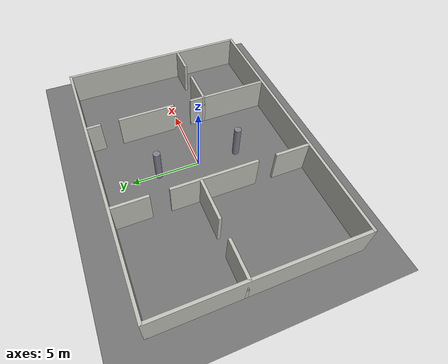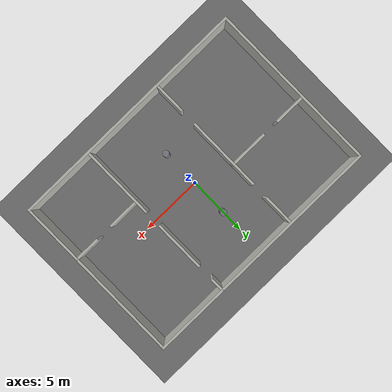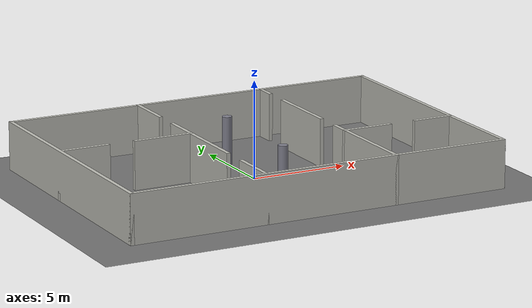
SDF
<sdf version="1.9">
 <world name="origin_office_people">
  <spherical_coordinates>
   <surface_model>EARTH_WGS84</surface_model>
   <world_frame_orientation>ENU</world_frame_orientation>
   <latitude_deg>51.453423125136865</latitude_deg>
   <longitude_deg>5.448826930660351</longitude_deg>
   <elevation>0</elevation>
   <heading_deg>0</heading_deg>
  </spherical_coordinates>
  <physics name="1ms" type="ignored">
   <max_step_size>0.01</max_step_size>
   <real_time_factor>1.0</real_time_factor>
  </physics>
  <plugin filename="gz-sim-physics-system" name="gz::sim::systems::Physics"/>
  <plugin filename="gz-sim-scene-broadcaster-system" name="gz::sim::systems::SceneBroadcaster"/>
  <plugin filename="gz-sim-user-commands-system" name="gz::sim::systems::UserCommands"/>
  <scene><ambient>0.6 0.6 0.6 1</ambient><background>0.8 0.85 0.9 1</background><shadows>false</shadows></scene>
  <light type="directional" name="sun">
   <cast_shadows>false</cast_shadows>
   <pose>0 0 10 0 0 0</pose>
   <diffuse>0.9 0.9 0.9 1</diffuse>
   <specular>0.2 0.2 0.2 1</specular>
   <direction>-0.3 0.2 -0.9</direction>
  </light>
  <model name="ground_plane">
   <static>true</static>
   <link name="link">
    <collision name="c">
     <geometry><plane><normal>0 0 1</normal><size>40 30</size></plane></geometry>
     <surface><friction><ode><mu>1</mu><mu2>1</mu2></ode></friction></surface>
    </collision>
    <visual name="v">
     <geometry><plane><normal>0 0 1</normal><size>40 30</size></plane></geometry>
     <material><ambient>0.45 0.45 0.45 1</ambient><diffuse>0.45 0.45 0.45 1</diffuse></material>
    </visual>
   </link>
  </model>
  <model name="wall_00">
   <static>true</static>
   <pose>0.0 -7 1.25 0 0 0</pose>
   <link name="link">
    <collision name="c"><geometry><box><size>20.2 0.2 2.5</size></box></geometry></collision>
    <visual name="v">
     <geometry><box><size>20.2 0.2 2.5</size></box></geometry>
     <material><ambient>0.75 0.75 0.72 1</ambient><diffuse>0.75 0.75 0.72 1</diffuse></material>
    </visual>
   </link>
  </model>
  <model name="wall_01">
   <static>true</static>
   <pose>0.0 7 1.25 0 0 0</pose>
   <link name="link">
    <collision name="c"><geometry><box><size>20.2 0.2 2.5</size></box></geometry></collision>
    <visual name="v">
     <geometry><box><size>20.2 0.2 2.5</size></box></geometry>
     <material><ambient>0.75 0.75 0.72 1</ambient><diffuse>0.75 0.75 0.72 1</diffuse></material>
    </visual>
   </link>
  </model>
  <model name="wall_02">
   <static>true</static>
   <pose>-10 0.0 1.25 0 0 0</pose>
   <link name="link">
    <collision name="c"><geometry><box><size>0.2 14.2 2.5</size></box></geometry></collision>
    <visual name="v">
     <geometry><box><size>0.2 14.2 2.5</size></box></geometry>
     <material><ambient>0.75 0.75 0.72 1</ambient><diffuse>0.75 0.75 0.72 1</diffuse></material>
    </visual>
   </link>
  </model>
  <model name="wall_03">
   <static>true</static>
   <pose>10 0.0 1.25 0 0 0</pose>
   <link name="link">
    <collision name="c"><geometry><box><size>0.2 14.2 2.5</size></box></geometry></collision>
    <visual name="v">
     <geometry><box><size>0.2 14.2 2.5</size></box></geometry>
     <material><ambient>0.75 0.75 0.72 1</ambient><diffuse>0.75 0.75 0.72 1</diffuse></material>
    </visual>
   </link>
  </model>
  <model name="wall_04">
   <static>true</static>
   <pose>-3 -5.75 1.25 0 0 0</pose>
   <link name="link">
    <collision name="c"><geometry><box><size>0.2 2.7 2.5</size></box></geometry></collision>
    <visual name="v">
     <geometry><box><size>0.2 2.7 2.5</size></box></geometry>
     <material><ambient>0.75 0.75 0.72 1</ambient><diffuse>0.75 0.75 0.72 1</diffuse></material>
    </visual>
   </link>
  </model>
  <model name="wall_05">
   <static>true</static>
   <pose>-3 0.0 1.25 0 0 0</pose>
   <link name="link">
    <collision name="c"><geometry><box><size>0.2 6.2 2.5</size></box></geometry></collision>
    <visual name="v">
     <geometry><box><size>0.2 6.2 2.5</size></box></geometry>
     <material><ambient>0.75 0.75 0.72 1</ambient><diffuse>0.75 0.75 0.72 1</diffuse></material>
    </visual>
   </link>
  </model>
  <model name="wall_06">
   <static>true</static>
   <pose>-3 5.75 1.25 0 0 0</pose>
   <link name="link">
    <collision name="c"><geometry><box><size>0.2 2.7 2.5</size></box></geometry></collision>
    <visual name="v">
     <geometry><box><size>0.2 2.7 2.5</size></box></geometry>
     <material><ambient>0.75 0.75 0.72 1</ambient><diffuse>0.75 0.75 0.72 1</diffuse></material>
    </visual>
   </link>
  </model>
  <model name="wall_07">
   <static>true</static>
   <pose>4 -4.0 1.25 0 0 0</pose>
   <link name="link">
    <collision name="c"><geometry><box><size>0.2 6.2 2.5</size></box></geometry></collision>
    <visual name="v">
     <geometry><box><size>0.2 6.2 2.5</size></box></geometry>
     <material><ambient>0.75 0.75 0.72 1</ambient><diffuse>0.75 0.75 0.72 1</diffuse></material>
    </visual>
   </link>
  </model>
  <model name="wall_08">
   <static>true</static>
   <pose>4 2.5 1.25 0 0 0</pose>
   <link name="link">
    <collision name="c"><geometry><box><size>0.2 4.2 2.5</size></box></geometry></collision>
    <visual name="v">
     <geometry><box><size>0.2 4.2 2.5</size></box></geometry>
     <material><ambient>0.75 0.75 0.72 1</ambient><diffuse>0.75 0.75 0.72 1</diffuse></material>
    </visual>
   </link>
  </model>
  <model name="wall_09">
   <static>true</static>
   <pose>4 6.5 1.25 0 0 0</pose>
   <link name="link">
    <collision name="c"><geometry><box><size>0.2 1.2 2.5</size></box></geometry></collision>
    <visual name="v">
     <geometry><box><size>0.2 1.2 2.5</size></box></geometry>
     <material><ambient>0.75 0.75 0.72 1</ambient><diffuse>0.75 0.75 0.72 1</diffuse></material>
    </visual>
   </link>
  </model>
  <model name="wall_10">
   <static>true</static>
   <pose>-8.75 1 1.25 0 0 0</pose>
   <link name="link">
    <collision name="c"><geometry><box><size>2.7 0.2 2.5</size></box></geometry></collision>
    <visual name="v">
     <geometry><box><size>2.7 0.2 2.5</size></box></geometry>
     <material><ambient>0.75 0.75 0.72 1</ambient><diffuse>0.75 0.75 0.72 1</diffuse></material>
    </visual>
   </link>
  </model>
  <model name="wall_11">
   <static>true</static>
   <pose>-4.5 1 1.25 0 0 0</pose>
   <link name="link">
    <collision name="c"><geometry><box><size>3.2 0.2 2.5</size></box></geometry></collision>
    <visual name="v">
     <geometry><box><size>3.2 0.2 2.5</size></box></geometry>
     <material><ambient>0.75 0.75 0.72 1</ambient><diffuse>0.75 0.75 0.72 1</diffuse></material>
    </visual>
   </link>
  </model>
  <model name="wall_12">
   <static>true</static>
   <pose>5.25 -2 1.25 0 0 0</pose>
   <link name="link">
    <collision name="c"><geometry><box><size>2.7 0.2 2.5</size></box></geometry></collision>
    <visual name="v">
     <geometry><box><size>2.7 0.2 2.5</size></box></geometry>
     <material><ambient>0.75 0.75 0.72 1</ambient><diffuse>0.75 0.75 0.72 1</diffuse></material>
    </visual>
   </link>
  </model>
  <model name="wall_13">
   <static>true</static>
   <pose>9.0 -2 1.25 0 0 0</pose>
   <link name="link">
    <collision name="c"><geometry><box><size>2.2 0.2 2.5</size></box></geometry></collision>
    <visual name="v">
     <geometry><box><size>2.2 0.2 2.5</size></box></geometry>
     <material><ambient>0.75 0.75 0.72 1</ambient><diffuse>0.75 0.75 0.72 1</diffuse></material>
    </visual>
   </link>
  </model>
  <model name="pillar_n">
   <static>true</static>
   <pose>0 3 1.25 0 0 0</pose>
   <link name="link">
    <collision name="c">
     <geometry><cylinder><radius>0.25</radius><length>2.5</length></cylinder></geometry>
    </collision>
    <visual name="v">
     <geometry><cylinder><radius>0.25</radius><length>2.5</length></cylinder></geometry>
     <material><ambient>0.5 0.5 0.55 1</ambient><diffuse>0.5 0.5 0.55 1</diffuse></material>
    </visual>
   </link>
  </model>
  <model name="pillar_s">
   <static>true</static>
   <pose>0 -3 1.25 0 0 0</pose>
   <link name="link">
    <collision name="c">
     <geometry><cylinder><radius>0.25</radius><length>2.5</length></cylinder></geometry>
    </collision>
    <visual name="v">
     <geometry><cylinder><radius>0.25</radius><length>2.5</length></cylinder></geometry>
     <material><ambient>0.5 0.5 0.55 1</ambient><diffuse>0.5 0.5 0.55 1</diffuse></material>
    </visual>
   </link>
  </model>
 </world>
</sdf>
